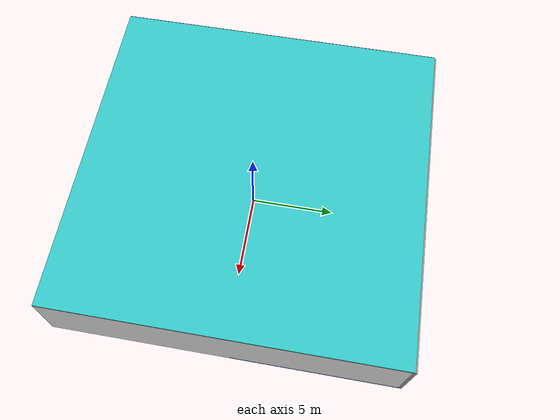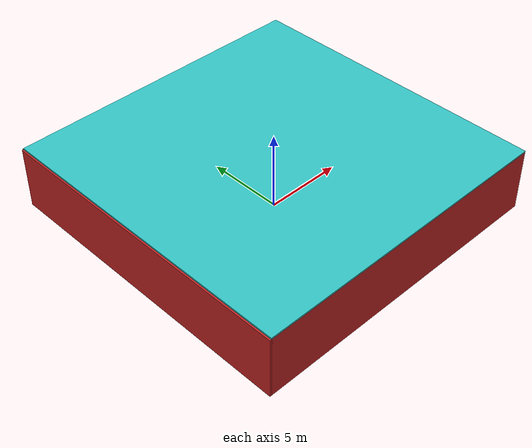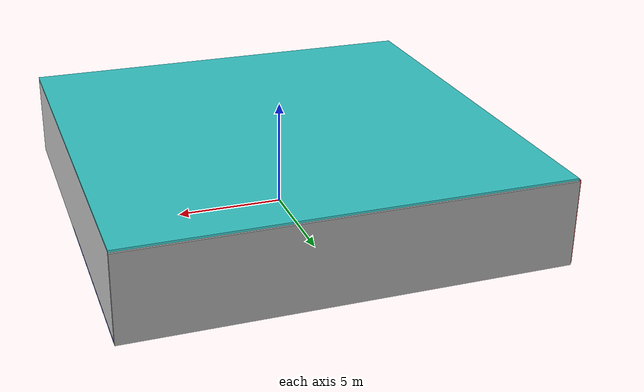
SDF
<sdf version="1.4">
 <world name="default">
  <physics type="ode">
   <max_step_size>0.001</max_step_size>
   <real_time_factor>1</real_time_factor>
   <real_time_update_rate>1000</real_time_update_rate>
   <gravity>0 0 -9.8</gravity>
  </physics>
  <scene><ambient>0.4 0.4 0.4 1</ambient><background>0.7 0.7 0.7 1</background><shadows>1</shadows></scene>
  <model name="Surrounding">
   <static>1</static>
   <link name="Ceiling">
    <collision name="Ceiling_Collision"><geometry><box><size>20 20 0.1</size></box></geometry></collision>
    <visual name="Ceiling_Visual">
     <geometry><box><size>20 20 0.1</size></box></geometry>
     <material>
      <script>
       <uri>file://media/materials/scripts/gazebo.material</uri>
       <name>Gazebo/TurquoiseGlowOutline</name>
      </script>
     </material>
    </visual>
    <pose>0 0 4.05 0 0 0</pose>
   </link>
   <link name="Wall_South">
    <collision name="Wall_South_Collision">
     <geometry><box><size>20 0 4</size></box></geometry>
     <pose>0 0 2 0 -0 0</pose>
    </collision>
    <visual name="Wall_South_Visual">
     <pose>0 0 2 0 -0 0</pose>
     <geometry><box><size>20 0 4</size></box></geometry>
     <material>
      <script><uri>file://media/materials/scripts/gazebo.material</uri><name>Gazebo/RedBright</name></script>
     </material>
    </visual>
    <velocity_decay><linear>0</linear><angular>0</angular></velocity_decay>
    <pose>0 -10 0 0 -0 0</pose>
   </link>
   <link name="Wall_East">
    <collision name="Wall_21_Collision">
     <geometry><box><size>20 0 4</size></box></geometry>
     <pose>0 0 2 0 -0 0</pose>
    </collision>
    <visual name="Wall_21_Visual">
     <pose>0 0 2 0 -0 0</pose>
     <geometry><box><size>20 0 4</size></box></geometry>
     <material>
      <script><uri>file://media/materials/scripts/gazebo.material</uri><name>Gazebo/White</name></script>
     </material>
    </visual>
    <velocity_decay><linear>0</linear><angular>0</angular></velocity_decay>
    <pose>10 0 0 0 -0 1.5708</pose>
   </link>
   <link name="Wall_North">
    <collision name="Wall_22_Collision">
     <geometry><box><size>20 0.2 4</size></box></geometry>
     <pose>0 0 2 0 -0 0</pose>
    </collision>
    <visual name="Wall_22_Visual">
     <pose>0 0 2 0 -0 0</pose>
     <geometry><box><size>20 0.2 4</size></box></geometry>
     <material>
      <script><uri>file://media/materials/scripts/gazebo.material</uri><name>Gazebo/GreyGradientSky</name></script>
     </material>
    </visual>
    <velocity_decay><linear>0</linear><angular>0</angular></velocity_decay>
    <pose>0 10 0 0 -0 0</pose>
   </link>
   <link name="Wall_West">
    <collision name="Wall_23_Collision">
     <geometry><box><size>20 0.2 4</size></box></geometry>
     <pose>0 0 2 0 -0 0</pose>
    </collision>
    <visual name="Wall_23_Visual">
     <pose>0 0 2 0 -0 0</pose>
     <geometry><box><size>20 0.2 4</size></box></geometry>
     <material>
      <script><uri>file://media/materials/scripts/gazebo.material</uri><name>Gazebo/RedGlow</name></script>
     </material>
    </visual>
    <velocity_decay><linear>0</linear><angular>0</angular></velocity_decay>
    <pose>-10 0 0 0 0 -1.5708</pose>
   </link>
   <link name="Ground_link">
    <collision name="collision">
     <pose>0 0 .05 0 -0 0</pose>
     <geometry><box><size>20 20 0.1</size></box></geometry>
    </collision>
    <visual name="visual">
     <pose>0 0 .05 0 -0 0</pose>
     <geometry><box><size>20 20 0.1</size></box></geometry>
     <material>
      <script><uri>file://media/materials/scripts/gazebo.material</uri><name>Gazebo/BlueLaser</name></script>
     </material>
    </visual>
   </link>
   <static>1</static>
  </model>
  <spherical_coordinates>
   <surface_model>EARTH_WGS84</surface_model>
   <latitude_deg>0</latitude_deg>
   <longitude_deg>0</longitude_deg>
   <elevation>0</elevation>
   <heading_deg>0</heading_deg>
  </spherical_coordinates>
  <light name="lightball_0" type="diffuse">
   <diffuse>0.8 0.8 0.8 1</diffuse>
   <specular>0.2 0.2 0.2 1</specular>
   <attenuation>
    <range>100</range>
    <constant>0.7</constant>
    <linear>0.01</linear>
    <quadratic>0.001</quadratic>
   </attenuation>
   <direction>-0.5 0.1 -0.9</direction>
   <pose>6.13830303563 0.327668840633 2.81569204784 0 0 0</pose>
  </light>
  <light name="lightball_1" type="diffuse">
   <diffuse>0.8 0.8 0.8 1</diffuse>
   <specular>0.2 0.2 0.2 1</specular>
   <attenuation>
    <range>100</range>
    <constant>0.7</constant>
    <linear>0.01</linear>
    <quadratic>0.001</quadratic>
   </attenuation>
   <direction>-0.5 0.1 -0.9</direction>
   <pose>-6.48616694554 3.57574352775 2.44058958376 0 0 0</pose>
  </light>
  <light name="lightball_2" type="diffuse">
   <diffuse>0.8 0.8 0.8 1</diffuse>
   <specular>0.2 0.2 0.2 1</specular>
   <attenuation>
    <range>100</range>
    <constant>0.7</constant>
    <linear>0.01</linear>
    <quadratic>0.001</quadratic>
   </attenuation>
   <direction>-0.5 0.1 -0.9</direction>
   <pose>-8.93981033937 -8.03474926144 1.55675575252 0 0 0</pose>
  </light>
  <light name="lightball_3" type="diffuse">
   <diffuse>0.8 0.8 0.8 1</diffuse>
   <specular>0.2 0.2 0.2 1</specular>
   <attenuation>
    <range>100</range>
    <constant>0.7</constant>
    <linear>0.01</linear>
    <quadratic>0.001</quadratic>
   </attenuation>
   <direction>-0.5 0.1 -0.9</direction>
   <pose>5.27659576398 -3.29110742096 3.08190486856 0 0 0</pose>
  </light>
  <light name="lightball_4" type="diffuse">
   <diffuse>0.8 0.8 0.8 1</diffuse>
   <specular>0.2 0.2 0.2 1</specular>
   <attenuation>
    <range>100</range>
    <constant>0.7</constant>
    <linear>0.01</linear>
    <quadratic>0.001</quadratic>
   </attenuation>
   <direction>-0.5 0.1 -0.9</direction>
   <pose>7.20416184287 2.41865247043 2.81887807119 0 0 0</pose>
  </light>
  <light name="lightball_5" type="diffuse">
   <diffuse>0.8 0.8 0.8 1</diffuse>
   <specular>0.2 0.2 0.2 1</specular>
   <attenuation>
    <range>100</range>
    <constant>0.7</constant>
    <linear>0.01</linear>
    <quadratic>0.001</quadratic>
   </attenuation>
   <direction>-0.5 0.1 -0.9</direction>
   <pose>-1.16068297254 6.71637629544 2.44737553347 0 0 0</pose>
  </light>
  <light name="lightball_6" type="diffuse">
   <diffuse>0.8 0.8 0.8 1</diffuse>
   <specular>0.2 0.2 0.2 1</specular>
   <attenuation>
    <range>100</range>
    <constant>0.7</constant>
    <linear>0.01</linear>
    <quadratic>0.001</quadratic>
   </attenuation>
   <direction>-0.5 0.1 -0.9</direction>
   <pose>7.07739847359 -7.85129885451 2.04558481459 0 0 0</pose>
  </light>
  <light name="lightball_7" type="diffuse">
   <diffuse>0.8 0.8 0.8 1</diffuse>
   <specular>0.2 0.2 0.2 1</specular>
   <attenuation>
    <range>100</range>
    <constant>0.7</constant>
    <linear>0.01</linear>
    <quadratic>0.001</quadratic>
   </attenuation>
   <direction>-0.5 0.1 -0.9</direction>
   <pose>-7.52083704939 -8.4678964485 1.07827320231 0 0 0</pose>
  </light>
  <light name="lightball_8" type="diffuse">
   <diffuse>0.8 0.8 0.8 1</diffuse>
   <specular>0.2 0.2 0.2 1</specular>
   <attenuation>
    <range>100</range>
    <constant>0.7</constant>
    <linear>0.01</linear>
    <quadratic>0.001</quadratic>
   </attenuation>
   <direction>-0.5 0.1 -0.9</direction>
   <pose>-9.144862441 1.32643130969 3.14907813084 0 0 0</pose>
  </light>
  <light name="lightball_9" type="diffuse">
   <diffuse>0.8 0.8 0.8 1</diffuse>
   <specular>0.2 0.2 0.2 1</specular>
   <attenuation>
    <range>100</range>
    <constant>0.7</constant>
    <linear>0.01</linear>
    <quadratic>0.001</quadratic>
   </attenuation>
   <direction>-0.5 0.1 -0.9</direction>
   <pose>-6.56899848266 3.78784887208 3.760804587 0 0 0</pose>
  </light>
  <include>
   <uri>model://textured_shapes</uri>
   <pose>-5.33120000771 -3.69419940278 0 0 0 0.820497122819</pose>
  </include>
  <include><uri>model://cabinet</uri><pose>-3.43963861506 7.95617674206 0 0 0 0.882269349539</pose></include>
  <include>
   <uri>model://robocup_3Dsim_goal</uri>
   <pose>-0.4766701306 0.322566169532 0 0 0 2.59782528894</pose>
  </include>
 </world>
</sdf>

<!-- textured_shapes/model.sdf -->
<sdf version="1.6">
  <model name="textured_shapes">
    <pose>0 0 0.5 0 0 0</pose>
    <link name="box">
      <pose>0 -1.5 0 0 0 0</pose>
      <collision name="collision">
        <geometry>
          <box>
            <size>1 1 1</size>
          </box>
        </geometry>
      </collision>
      <visual name="visual">
        <geometry>
          <box>
            <size>1 1 1</size>
          </box>
        </geometry>
        <material>
          <script>
            <uri>model://../model_source/models/textured_shapes/materials/scripts</uri>
            <uri>model://../model_source/models/textured_shapes/materials/textures</uri>
            <name>TexturedShape/Squares</name>
          </script>
        </material>
      </visual>
    </link>
    <link name="sphere">
      <collision name="collision">
        <geometry>
          <sphere>
            <radius>0.5</radius>
          </sphere>
        </geometry>
      </collision>
      <visual name="visual">
        <geometry>
          <sphere>
            <radius>0.5</radius>
          </sphere>
        </geometry>
        <material>
          <script>
            <uri>model://../model_source/models/textured_shapes/materials/scripts</uri>
            <uri>model://../model_source/models/textured_shapes/materials/textures</uri>
            <name>TexturedShape/Squares</name>
          </script>
        </material>
      </visual>
    </link>
    <link name="cylinder">
      <pose>0 1.5 0 0 0 0</pose>
      <collision name="collision">
        <geometry>
          <cylinder>
            <radius>0.5</radius>
            <length>1</length>
          </cylinder>
        </geometry>
      </collision>
      <visual name="visual">
        <geometry>
          <cylinder>
            <radius>0.5</radius>
            <length>1</length>
          </cylinder>
        </geometry>
        <material>
          <script>
            <uri>model://../model_source/models/textured_shapes/materials/scripts</uri>
            <uri>model://../model_source/models/textured_shapes/materials/textures</uri>
            <name>TexturedShape/Squares</name>
          </script>
        </material>
      </visual>
    </link>
  </model>
</sdf>

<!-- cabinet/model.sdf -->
<sdf version="1.5">
  <model name="cabinet">
    <static>true</static>
    <link name="cabinet_bottom_plate">
      <inertial>
        <pose>0 0 -1 0 0 0</pose>
        <inertia>
          <ixx>2.050000</ixx>
          <ixy>0</ixy>
          <ixz>0</ixz>
          <iyy>2.050000</iyy>
          <iyz>0</iyz>
          <izz>2.050000</izz>
        </inertia>
        <mass>25.000000</mass>
      </inertial>
      <collision name="cabinet_bottom_plate_geom">
        <pose>0 0 0.010000 0 0 0</pose>
        <geometry>
          <box>
            <size>0.450000 0.450000 0.020000</size>
          </box>
        </geometry>
      </collision>
      <visual name="cabinet_bottom_plate_geom_visual">
        <pose>0 0 0.010000 0 0 0</pose>
        <geometry>
          <box>
            <size>0.450000 0.450000 0.020000</size>
          </box>
        </geometry>
        <material>
          <script>
            <uri>model://media/materials/scripts/gazebo.material</uri>
            <name>Gazebo/Wood</name>
          </script>
        </material>
      </visual>
      <collision name="cabinet_bottom_plate_geom_cabinet_back_plate">
        <pose>0.235000 0 0.510000 0 0 0</pose>
        <geometry>
          <box>
            <size>0.020000 0.450000 1.020000</size>
          </box>
        </geometry>
      </collision>
      <visual name="cabinet_bottom_plate_geom_cabinet_back_plate_visual">
        <pose>0.235000 0 0.510000 0 0 0</pose>
        <geometry>
          <box>
            <size>0.020000 0.450000 1.020000</size>
          </box>
        </geometry>
        <material>
          <script>
            <uri>model://media/materials/scripts/gazebo.material</uri>
            <name>Gazebo/Wood</name>
          </script>
        </material>
      </visual>
      <collision name="cabinet_bottom_plate_geom_cabinet_left_plate">
        <pose>0 0.235000 0.510000 0 0 0</pose>
        <geometry>
          <box>
            <size>0.450000 0.020000 1.020000</size>
          </box>
        </geometry>
      </collision>
      <visual name="cabinet_bottom_plate_geom_cabinet_left_plate_visual">
        <pose>0 0.235000 0.510000 0 0 0</pose>
        <geometry>
          <box>
            <size>0.450000 0.020000 1.020000</size>
          </box>
        </geometry>
        <material>
          <script>
            <uri>model://media/materials/scripts/gazebo.material</uri>
            <name>Gazebo/Wood</name>
          </script>
        </material>
      </visual>
      <collision name="cabinet_bottom_plate_geom_cabinet_middle_plate">
        <pose>0 0 0.510000 0 0 0</pose>
        <geometry>
          <box>
            <size>0.450000 0.450000 0.020000</size>
          </box>
        </geometry>
      </collision>
      <visual name="cabinet_bottom_plate_geom_cabinet_middle_plate_visual">
        <pose>0 0 0.510000 0 0 0</pose>
        <geometry>
          <box>
            <size>0.450000 0.450000 0.020000</size>
          </box>
        </geometry>
        <material>
          <script>
            <uri>model://media/materials/scripts/gazebo.material</uri>
            <name>Gazebo/Wood</name>
          </script>
        </material>
      </visual>
      <collision name="cabinet_bottom_plate_geom_cabinet_right_plate">
        <pose>0 -0.235000 0.510000 0 0 0</pose>
        <geometry>
          <box>
            <size>0.450000 0.020000 1.020000</size>
          </box>
        </geometry>
      </collision>
      <visual name="cabinet_bottom_plate_geom_cabinet_right_plate_visual">
        <pose>0 -0.235000 0.510000 0 0 0</pose>
        <geometry>
          <box>
            <size>0.450000 0.020000 1.020000</size>
          </box>
        </geometry>
        <material>
          <script>
            <uri>model://media/materials/scripts/gazebo.material</uri>
            <name>Gazebo/Wood</name>
          </script>
        </material>
      </visual>
      <collision name="cabinet_bottom_plate_geom_cabinet_top_plate">
        <pose>0 0 1.010000 0 0 0</pose>
        <geometry>
          <box>
            <size>0.450000 0.450000 0.020000</size>
          </box>
        </geometry>
      </collision>
      <visual name="cabinet_bottom_plate_geom_cabinet_top_plate_visual">
        <pose>0 0 1.010000 0 0 0</pose>
        <geometry>
          <box>
            <size>0.450000 0.450000 0.020000</size>
          </box>
        </geometry>
        <material>
          <script>
            <uri>model://media/materials/scripts/gazebo.material</uri>
            <name>Gazebo/Wood</name>
          </script>
        </material>
      </visual>
    </link>
  </model>
</sdf>

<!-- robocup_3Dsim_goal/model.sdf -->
<sdf version="1.5">
  <model name="robocup_3d_goal">
    <static>true</static>
    <link name="left_post">
      <pose>0 1.05 0.45 0 0 0</pose>
      <collision name="collision">
        <geometry>
          <cylinder>
            <radius>0.05</radius>
            <length>0.9</length>
          </cylinder>
        </geometry>
      </collision>
      <visual name="visual">
        <geometry>
          <cylinder>
            <radius>0.05</radius>
            <length>0.9</length>
          </cylinder>
        </geometry>
        <material>
          <script>
            <uri>file://media/materials/scripts/gazebo.material</uri>
            <name>Gazebo/ZincYellow</name>
          </script>
        </material>
      </visual>
    </link>
    <link name="left_support_horiz_lower">
      <pose>0.30 1.05 0.01 0 0 0</pose>
      <collision name="collision">
        <geometry>
          <box>
            <size>0.50 0.02 0.02</size>
          </box>
        </geometry>
      </collision>
      <visual name="visual">
        <geometry>
          <box>
            <size>0.50 0.02 0.02</size>
          </box>
        </geometry>
        <material>
          <script>
            <uri>file://media/materials/scripts/gazebo.material</uri>
            <name>Gazebo/White</name>
          </script>
        </material>
      </visual>
    </link>
    <link name="left_support_horiz_upper">
      <pose>0.30 1.05 0.79 0 0 0</pose>
      <collision name="collision">
        <geometry>
          <box>
            <size>0.50 0.02 0.02</size>
          </box>
        </geometry>
      </collision>
      <visual name="visual">
        <geometry>
          <box>
            <size>0.50 0.02 0.02</size>
          </box>
        </geometry>
        <material>
          <script>
            <uri>file://media/materials/scripts/gazebo.material</uri>
            <name>Gazebo/White</name>
          </script>
        </material>
      </visual>
    </link>
    <link name="left_support_vertical">
      <pose>0.56 1.05 0.4 0 1.5708 0</pose>
      <collision name="collision">
        <geometry>
          <box>
            <size>0.80 0.02 0.02</size>
          </box>
        </geometry>
      </collision>
      <visual name="visual">
        <geometry>
          <box>
            <size>0.80 0.02 0.02</size>
          </box>
        </geometry>
        <material>
          <script>
            <uri>file://media/materials/scripts/gazebo.material</uri>
            <name>Gazebo/White</name>
          </script>
        </material>
      </visual>
    </link>
    <link name="right_support_horiz_lower">
      <pose>0.30 -1.05 0.01 0 0 0</pose>
      <collision name="collision">
        <geometry>
          <box>
            <size>0.50 0.02 0.02</size>
          </box>
        </geometry>
      </collision>
      <visual name="visual">
        <geometry>
          <box>
            <size>0.50 0.02 0.02</size>
          </box>
        </geometry>
        <material>
          <script>
            <uri>file://media/materials/scripts/gazebo.material</uri>
            <name>Gazebo/White</name>
          </script>
        </material>
      </visual>
    </link>
    <link name="right_support_horiz_upper">
      <pose>0.30 -1.05 0.79 0 0 0</pose>
      <collision name="collision">
        <geometry>
          <box>
            <size>0.50 0.02 0.02</size>
          </box>
        </geometry>
      </collision>
      <visual name="visual">
        <geometry>
          <box>
            <size>0.50 0.02 0.02</size>
          </box>
        </geometry>
        <material>
          <script>
            <uri>file://media/materials/scripts/gazebo.material</uri>
            <name>Gazebo/White</name>
          </script>
        </material>
      </visual>
    </link>
    <link name="right_support_vertical">
      <pose>0.56 -1.05 0.4 0 1.5708 0</pose>
      <collision name="collision">
        <geometry>
          <box>
            <size>0.80 0.02 0.02</size>
          </box>
        </geometry>
      </collision>
      <visual name="visual">
        <geometry>
          <box>
            <size>0.80 0.02 0.02</size>
          </box>
        </geometry>
        <material>
          <script>
            <uri>file://media/materials/scripts/gazebo.material</uri>
            <name>Gazebo/White</name>
          </script>
        </material>
      </visual>
    </link>
    <link name="center_support_horiz_lower">
      <pose>0.56 0 0.01 0 1.5708 0</pose>
      <collision name="collision">
        <geometry>
          <box>
            <size>0.02 2.08 0.02</size>
          </box>
        </geometry>
      </collision>
      <visual name="visual">
        <geometry>
          <box>
            <size>0.02 2.08 0.02</size>
          </box>
        </geometry>
        <material>
          <script>
            <uri>file://media/materials/scripts/gazebo.material</uri>
            <name>Gazebo/White</name>
          </script>
        </material>
      </visual>
    </link>
    <link name="center_support_horiz_upper">
      <pose>0.56 0 0.79 0 1.5708 0</pose>
      <collision name="collision">
        <geometry>
          <box>
            <size>0.02 2.08 0.02</size>
          </box>
        </geometry>
      </collision>
      <visual name="visual">
        <geometry>
          <box>
            <size>0.02 2.08 0.02</size>
          </box>
        </geometry>
        <material>
          <script>
            <uri>file://media/materials/scripts/gazebo.material</uri>
            <name>Gazebo/White</name>
          </script>
        </material>
      </visual>
    </link>
    <link name="right_post">
      <pose>0 -1.05 0.45 0 0 0</pose>
      <collision name="collision">
        <geometry>
          <cylinder>
            <radius>0.05</radius>
            <length>0.9</length>
          </cylinder>
        </geometry>
      </collision>
      <visual name="visual">
        <geometry>
          <cylinder>
            <radius>0.05</radius>
            <length>0.9</length>
          </cylinder>
        </geometry>
        <material>
          <script>
            <uri>file://media/materials/scripts/gazebo.material</uri>
            <name>Gazebo/ZincYellow</name>
          </script>
        </material>
      </visual>
    </link>
    <link name="crossbar">
      <pose>0 0 0.85 1.57 1.57 0</pose>
      <collision name="collision">
        <geometry>
          <cylinder>
            <radius>0.05</radius>
            <length>2.0</length>
          </cylinder>
        </geometry>
      </collision>
      <visual name="visual">
        <geometry>
          <cylinder>
            <radius>0.05</radius>
            <length>2.0</length>
          </cylinder>
        </geometry>
        <material>
          <script>
            <uri>file://media/materials/scripts/gazebo.material</uri>
            <name>Gazebo/ZincYellow</name>
          </script>
        </material>
      </visual>
    </link>
    <link name="center_net">
      <pose>0.56 0 0.40 0 0 0</pose>
      <collision name="collision">
        <geometry>
          <box>
            <size>0.01 2.1 0.80</size>
          </box>
        </geometry>
      </collision>
      <visual name="visual">
        <geometry>
          <box>
            <size>0.01 2.1 0.80</size>
          </box>
        </geometry>
        <material>
          <script>
            <uri>model://../model_source/models/robocup09_spl_field/materials/scripts/</uri>
            <uri>model://../model_source/models/robocup09_spl_field/materials/textures/</uri>
            <name>RoboCup/Net</name>
          </script>
        </material>
      </visual>
    </link>
    <link name="left_net">
      <pose>0.30 1.05 0.40 0 0 0</pose>
      <collision name="collision">
        <geometry>
          <box>
            <size>0.50 0.01 0.76</size>
          </box>
        </geometry>
      </collision>
      <visual name="visual">
        <geometry>
          <box>
            <size>0.50 0.01 0.76</size>
          </box>
        </geometry>
        <material>
          <script>
            <uri>model://../model_source/models/robocup09_spl_field/materials/scripts/</uri>
            <uri>model://../model_source/models/robocup09_spl_field/materials/textures/</uri>
            <name>RoboCup/Net</name>
          </script>
        </material>
      </visual>
    </link>
    <link name="right_net">
      <pose>0.30 -1.05 0.40 0 0 0</pose>
      <collision name="collision">
        <geometry>
          <box>
            <size>0.50 0.01 0.76</size>
          </box>
        </geometry>
      </collision>
      <visual name="visual">
        <geometry>
          <box>
            <size>0.50 0.01 0.76</size>
          </box>
        </geometry>
        <material>
          <script>
            <uri>model://../model_source/models/robocup09_spl_field/materials/scripts/</uri>
            <uri>model://../model_source/models/robocup09_spl_field/materials/textures/</uri>
            <name>RoboCup/Net</name>
          </script>
        </material>
      </visual>
    </link>
  </model>
</sdf>
